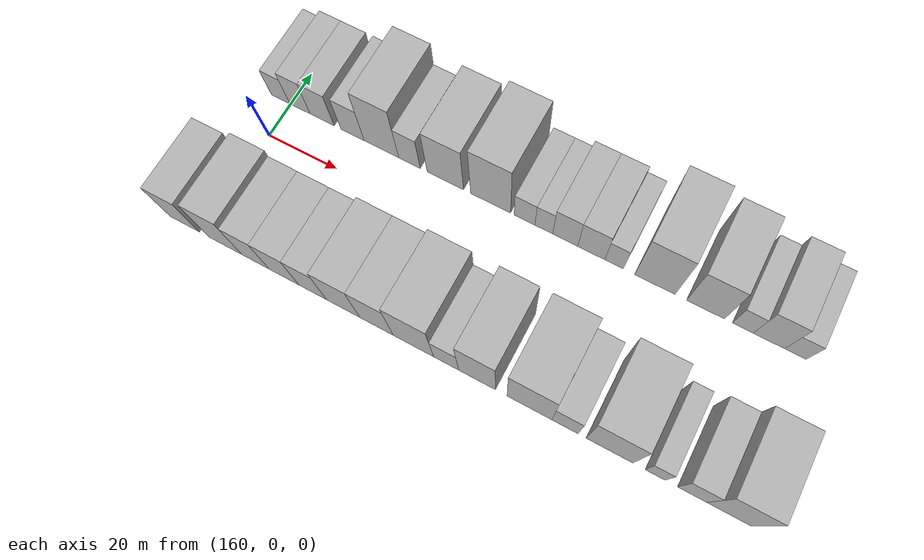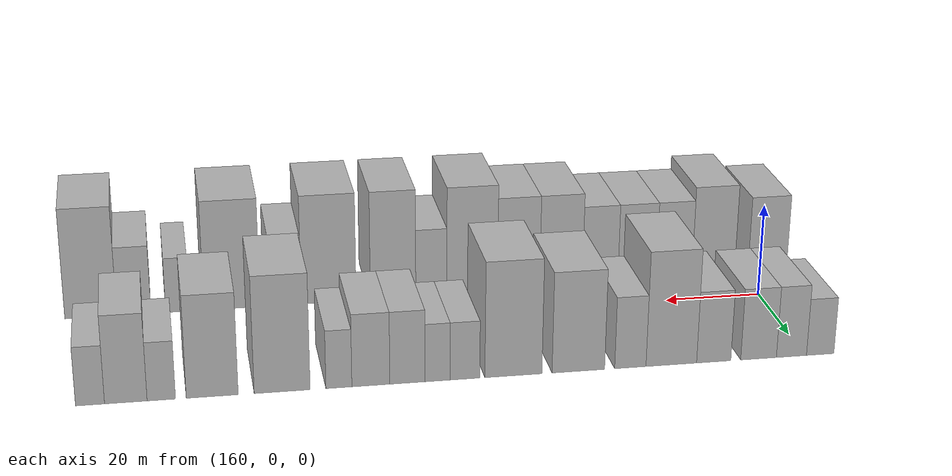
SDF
<sdf version="1.6">
 <world name="default">
  <model name="building_19">
   <static>1</static>
   <pose>156.9476 20.0000 0 0.000000 0.000000 1.570796</pose>
   <link name="link">
    <pose>0 0 6.00 0 0 0</pose>
    <collision name="collision"><geometry><box><size>20.0000 5.6008 12.0000</size></box></geometry></collision>
    <visual name="visual">
     <cast_shadows>0</cast_shadows>
     <geometry><box><size>20.0000 5.6008 12.0000</size></box></geometry>
     <material>
      <script>
       <uri>model://HANNAS_wall/materials/scripts</uri>
       <uri>model://HANNAS_wall/materials/textures</uri>
       <name>vrc/HANNAS_wall</name>
      </script>
     </material>
    </visual>
   </link>
  </model>
  <model name="building_20">
   <static>1</static>
   <pose>162.8189 20.0000 0 0.000000 0.000000 1.570796</pose>
   <link name="link">
    <pose>0 0 7.50 0 0 0</pose>
    <collision name="collision"><geometry><box><size>20.0000 6.1417 15.0000</size></box></geometry></collision>
    <visual name="visual">
     <cast_shadows>0</cast_shadows>
     <geometry><box><size>20.0000 6.1417 15.0000</size></box></geometry>
     <material>
      <script>
       <uri>model://HANNAS_wall/materials/scripts</uri>
       <uri>model://HANNAS_wall/materials/textures</uri>
       <name>vrc/HANNAS_wall</name>
      </script>
     </material>
    </visual>
   </link>
  </model>
  <model name="building_21">
   <static>1</static>
   <pose>169.5122 20.0000 0 0.000000 0.000000 1.570796</pose>
   <link name="link">
    <pose>0 0 7.50 0 0 0</pose>
    <collision name="collision"><geometry><box><size>20.0000 7.2449 15.0000</size></box></geometry></collision>
    <visual name="visual">
     <cast_shadows>0</cast_shadows>
     <geometry><box><size>20.0000 7.2449 15.0000</size></box></geometry>
     <material>
      <script>
       <uri>model://HANNAS_wall/materials/scripts</uri>
       <uri>model://HANNAS_wall/materials/textures</uri>
       <name>vrc/HANNAS_wall</name>
      </script>
     </material>
    </visual>
   </link>
  </model>
  <model name="building_22">
   <static>1</static>
   <pose>178.5858 20.0000 0 0.000000 0.000000 1.570796</pose>
   <link name="link">
    <pose>0 0 7.50 0 0 0</pose>
    <collision name="collision"><geometry><box><size>20.0000 6.9025 15.0000</size></box></geometry></collision>
    <visual name="visual">
     <cast_shadows>0</cast_shadows>
     <geometry><box><size>20.0000 6.9025 15.0000</size></box></geometry>
     <material>
      <script>
       <uri>model://HANNAS_wall/materials/scripts</uri>
       <uri>model://HANNAS_wall/materials/textures</uri>
       <name>vrc/HANNAS_wall</name>
      </script>
     </material>
    </visual>
   </link>
  </model>
  <model name="building_23">
   <static>1</static>
   <pose>187.1096 20.0000 0 0.000000 0.000000 1.570796</pose>
   <link name="link">
    <pose>0 0 12.00 0 0 0</pose>
    <collision name="collision"><geometry><box><size>20.0000 10.1450 24.0000</size></box></geometry></collision>
    <visual name="visual">
     <cast_shadows>0</cast_shadows>
     <geometry><box><size>20.0000 10.1450 24.0000</size></box></geometry>
     <material>
      <script>
       <uri>model://HANNAS_wall/materials/scripts</uri>
       <uri>model://HANNAS_wall/materials/textures</uri>
       <name>vrc/HANNAS_wall</name>
      </script>
     </material>
    </visual>
   </link>
  </model>
  <model name="building_24">
   <static>1</static>
   <pose>195.2996 20.0000 0 0.000000 0.000000 1.570796</pose>
   <link name="link">
    <pose>0 0 7.50 0 0 0</pose>
    <collision name="collision"><geometry><box><size>20.0000 6.2351 15.0000</size></box></geometry></collision>
    <visual name="visual">
     <cast_shadows>0</cast_shadows>
     <geometry><box><size>20.0000 6.2351 15.0000</size></box></geometry>
     <material>
      <script>
       <uri>model://HANNAS_wall/materials/scripts</uri>
       <uri>model://HANNAS_wall/materials/textures</uri>
       <name>vrc/HANNAS_wall</name>
      </script>
     </material>
    </visual>
   </link>
  </model>
  <model name="building_25">
   <static>1</static>
   <pose>205.6078 20.0000 0 0.000000 0.000000 1.570796</pose>
   <link name="link">
    <pose>0 0 10.50 0 0 0</pose>
    <collision name="collision"><geometry><box><size>20.0000 10.3812 21.0000</size></box></geometry></collision>
    <visual name="visual">
     <cast_shadows>0</cast_shadows>
     <geometry><box><size>20.0000 10.3812 21.0000</size></box></geometry>
     <material>
      <script>
       <uri>model://HANNAS_wall/materials/scripts</uri>
       <uri>model://HANNAS_wall/materials/textures</uri>
       <name>vrc/HANNAS_wall</name>
      </script>
     </material>
    </visual>
   </link>
  </model>
  <model name="building_26">
   <static>1</static>
   <pose>218.3820 20.0000 0 0.000000 0.000000 1.570796</pose>
   <link name="link">
    <pose>0 0 12.00 0 0 0</pose>
    <collision name="collision"><geometry><box><size>20.0000 11.1672 24.0000</size></box></geometry></collision>
    <visual name="visual">
     <cast_shadows>0</cast_shadows>
     <geometry><box><size>20.0000 11.1672 24.0000</size></box></geometry>
     <material>
      <script>
       <uri>model://HANNAS_wall/materials/scripts</uri>
       <uri>model://HANNAS_wall/materials/textures</uri>
       <name>vrc/HANNAS_wall</name>
      </script>
     </material>
    </visual>
   </link>
  </model>
  <model name="building_27">
   <static>1</static>
   <pose>227.8419 20.0000 0 0.000000 0.000000 1.570796</pose>
   <link name="link">
    <pose>0 0 6.00 0 0 0</pose>
    <collision name="collision"><geometry><box><size>20.0000 5.7525 12.0000</size></box></geometry></collision>
    <visual name="visual">
     <cast_shadows>0</cast_shadows>
     <geometry><box><size>20.0000 5.7525 12.0000</size></box></geometry>
     <material>
      <script>
       <uri>model://HANNAS_wall/materials/scripts</uri>
       <uri>model://HANNAS_wall/materials/textures</uri>
       <name>vrc/HANNAS_wall</name>
      </script>
     </material>
    </visual>
   </link>
  </model>
  <model name="building_28">
   <static>1</static>
   <pose>233.1549 20.0000 0 0.000000 0.000000 1.570796</pose>
   <link name="link">
    <pose>0 0 6.00 0 0 0</pose>
    <collision name="collision"><geometry><box><size>20.0000 4.8735 12.0000</size></box></geometry></collision>
    <visual name="visual">
     <cast_shadows>0</cast_shadows>
     <geometry><box><size>20.0000 4.8735 12.0000</size></box></geometry>
     <material>
      <script>
       <uri>model://HANNAS_wall/materials/scripts</uri>
       <uri>model://HANNAS_wall/materials/textures</uri>
       <name>vrc/HANNAS_wall</name>
      </script>
     </material>
    </visual>
   </link>
  </model>
  <model name="building_29">
   <static>1</static>
   <pose>238.9770 20.0000 0 0.000000 0.000000 1.570796</pose>
   <link name="link">
    <pose>0 0 7.50 0 0 0</pose>
    <collision name="collision"><geometry><box><size>20.0000 6.7708 15.0000</size></box></geometry></collision>
    <visual name="visual">
     <cast_shadows>0</cast_shadows>
     <geometry><box><size>20.0000 6.7708 15.0000</size></box></geometry>
     <material>
      <script>
       <uri>model://HANNAS_wall/materials/scripts</uri>
       <uri>model://HANNAS_wall/materials/textures</uri>
       <name>vrc/HANNAS_wall</name>
      </script>
     </material>
    </visual>
   </link>
  </model>
  <model name="building_30">
   <static>1</static>
   <pose>245.9957 20.0000 0 0.000000 0.000000 1.570796</pose>
   <link name="link">
    <pose>0 0 7.50 0 0 0</pose>
    <collision name="collision"><geometry><box><size>20.0000 7.2665 15.0000</size></box></geometry></collision>
    <visual name="visual">
     <cast_shadows>0</cast_shadows>
     <geometry><box><size>20.0000 7.2665 15.0000</size></box></geometry>
     <material>
      <script>
       <uri>model://HANNAS_wall/materials/scripts</uri>
       <uri>model://HANNAS_wall/materials/textures</uri>
       <name>vrc/HANNAS_wall</name>
      </script>
     </material>
    </visual>
   </link>
  </model>
  <model name="building_31">
   <static>1</static>
   <pose>252.1011 20.0000 0 0.000000 0.000000 1.570796</pose>
   <link name="link">
    <pose>0 0 6.00 0 0 0</pose>
    <collision name="collision"><geometry><box><size>20.0000 4.9444 12.0000</size></box></geometry></collision>
    <visual name="visual">
     <cast_shadows>0</cast_shadows>
     <geometry><box><size>20.0000 4.9444 12.0000</size></box></geometry>
     <material>
      <script>
       <uri>model://HANNAS_wall/materials/scripts</uri>
       <uri>model://HANNAS_wall/materials/textures</uri>
       <name>vrc/HANNAS_wall</name>
      </script>
     </material>
    </visual>
   </link>
  </model>
  <model name="building_32">
   <static>1</static>
   <pose>262.8687 20.0000 0 0.000000 0.000000 1.570796</pose>
   <link name="link">
    <pose>0 0 12.00 0 0 0</pose>
    <collision name="collision"><geometry><box><size>20.0000 10.5908 24.0000</size></box></geometry></collision>
    <visual name="visual">
     <cast_shadows>0</cast_shadows>
     <geometry><box><size>20.0000 10.5908 24.0000</size></box></geometry>
     <material>
      <script>
       <uri>model://HANNAS_wall/materials/scripts</uri>
       <uri>model://HANNAS_wall/materials/textures</uri>
       <name>vrc/HANNAS_wall</name>
      </script>
     </material>
    </visual>
   </link>
  </model>
  <model name="building_33">
   <static>1</static>
   <pose>276.0314 20.0000 0 0.000000 0.000000 1.570796</pose>
   <link name="link">
    <pose>0 0 10.50 0 0 0</pose>
    <collision name="collision"><geometry><box><size>20.0000 9.7345 21.0000</size></box></geometry></collision>
    <visual name="visual">
     <cast_shadows>0</cast_shadows>
     <geometry><box><size>20.0000 9.7345 21.0000</size></box></geometry>
     <material>
      <script>
       <uri>model://HANNAS_wall/materials/scripts</uri>
       <uri>model://HANNAS_wall/materials/textures</uri>
       <name>vrc/HANNAS_wall</name>
      </script>
     </material>
    </visual>
   </link>
  </model>
  <model name="building_34">
   <static>1</static>
   <pose>285.5381 20.0000 0 0.000000 0.000000 1.570796</pose>
   <link name="link">
    <pose>0 0 6.00 0 0 0</pose>
    <collision name="collision"><geometry><box><size>20.0000 5.2789 12.0000</size></box></geometry></collision>
    <visual name="visual">
     <cast_shadows>0</cast_shadows>
     <geometry><box><size>20.0000 5.2789 12.0000</size></box></geometry>
     <material>
      <script>
       <uri>model://HANNAS_wall/materials/scripts</uri>
       <uri>model://HANNAS_wall/materials/textures</uri>
       <name>vrc/HANNAS_wall</name>
      </script>
     </material>
    </visual>
   </link>
  </model>
  <model name="building_35">
   <static>1</static>
   <pose>292.1135 20.0000 0 0.000000 0.000000 1.570796</pose>
   <link name="link">
    <pose>0 0 9.00 0 0 0</pose>
    <collision name="collision"><geometry><box><size>20.0000 7.8719 18.0000</size></box></geometry></collision>
    <visual name="visual">
     <cast_shadows>0</cast_shadows>
     <geometry><box><size>20.0000 7.8719 18.0000</size></box></geometry>
     <material>
      <script>
       <uri>model://HANNAS_wall/materials/scripts</uri>
       <uri>model://HANNAS_wall/materials/textures</uri>
       <name>vrc/HANNAS_wall</name>
      </script>
     </material>
    </visual>
   </link>
  </model>
  <model name="building_36">
   <static>1</static>
   <pose>298.7198 20.0000 0 0.000000 0.000000 1.570796</pose>
   <link name="link">
    <pose>0 0 6.00 0 0 0</pose>
    <collision name="collision"><geometry><box><size>20.0000 5.3409 12.0000</size></box></geometry></collision>
    <visual name="visual">
     <cast_shadows>0</cast_shadows>
     <geometry><box><size>20.0000 5.3409 12.0000</size></box></geometry>
     <material>
      <script>
       <uri>model://HANNAS_wall/materials/scripts</uri>
       <uri>model://HANNAS_wall/materials/textures</uri>
       <name>vrc/HANNAS_wall</name>
      </script>
     </material>
    </visual>
   </link>
  </model>
  <model name="building_51">
   <static>1</static>
   <pose>154.9707 -20.0000 0 0.000000 0.000000 1.570796</pose>
   <link name="link">
    <pose>0 0 9.00 0 0 0</pose>
    <collision name="collision"><geometry><box><size>20.0000 8.6006 18.0000</size></box></geometry></collision>
    <visual name="visual">
     <cast_shadows>0</cast_shadows>
     <geometry><box><size>20.0000 8.6006 18.0000</size></box></geometry>
     <material>
      <script>
       <uri>model://HANNAS_wall/materials/scripts</uri>
       <uri>model://HANNAS_wall/materials/textures</uri>
       <name>vrc/HANNAS_wall</name>
      </script>
     </material>
    </visual>
   </link>
  </model>
  <model name="building_52">
   <static>1</static>
   <pose>166.9886 -20.0000 0 0.000000 0.000000 1.570796</pose>
   <link name="link">
    <pose>0 0 10.50 0 0 0</pose>
    <collision name="collision"><geometry><box><size>20.0000 9.4352 21.0000</size></box></geometry></collision>
    <visual name="visual">
     <cast_shadows>0</cast_shadows>
     <geometry><box><size>20.0000 9.4352 21.0000</size></box></geometry>
     <material>
      <script>
       <uri>model://HANNAS_wall/materials/scripts</uri>
       <uri>model://HANNAS_wall/materials/textures</uri>
       <name>vrc/HANNAS_wall</name>
      </script>
     </material>
    </visual>
   </link>
  </model>
  <model name="building_53">
   <static>1</static>
   <pose>175.6340 -20.0000 0 0.000000 0.000000 1.570796</pose>
   <link name="link">
    <pose>0 0 9.00 0 0 0</pose>
    <collision name="collision"><geometry><box><size>20.0000 7.8556 18.0000</size></box></geometry></collision>
    <visual name="visual">
     <cast_shadows>0</cast_shadows>
     <geometry><box><size>20.0000 7.8556 18.0000</size></box></geometry>
     <material>
      <script>
       <uri>model://HANNAS_wall/materials/scripts</uri>
       <uri>model://HANNAS_wall/materials/textures</uri>
       <name>vrc/HANNAS_wall</name>
      </script>
     </material>
    </visual>
   </link>
  </model>
  <model name="building_54">
   <static>1</static>
   <pose>183.7721 -20.0000 0 0.000000 0.000000 1.570796</pose>
   <link name="link">
    <pose>0 0 9.00 0 0 0</pose>
    <collision name="collision"><geometry><box><size>20.0000 8.4206 18.0000</size></box></geometry></collision>
    <visual name="visual">
     <cast_shadows>0</cast_shadows>
     <geometry><box><size>20.0000 8.4206 18.0000</size></box></geometry>
     <material>
      <script>
       <uri>model://HANNAS_wall/materials/scripts</uri>
       <uri>model://HANNAS_wall/materials/textures</uri>
       <name>vrc/HANNAS_wall</name>
      </script>
     </material>
    </visual>
   </link>
  </model>
  <model name="building_55">
   <static>1</static>
   <pose>191.8454 -20.0000 0 0.000000 0.000000 1.570796</pose>
   <link name="link">
    <pose>0 0 9.00 0 0 0</pose>
    <collision name="collision"><geometry><box><size>20.0000 7.7260 18.0000</size></box></geometry></collision>
    <visual name="visual">
     <cast_shadows>0</cast_shadows>
     <geometry><box><size>20.0000 7.7260 18.0000</size></box></geometry>
     <material>
      <script>
       <uri>model://HANNAS_wall/materials/scripts</uri>
       <uri>model://HANNAS_wall/materials/textures</uri>
       <name>vrc/HANNAS_wall</name>
      </script>
     </material>
    </visual>
   </link>
  </model>
  <model name="building_56">
   <static>1</static>
   <pose>200.3347 -20.0000 0 0.000000 0.000000 1.570796</pose>
   <link name="link">
    <pose>0 0 10.50 0 0 0</pose>
    <collision name="collision"><geometry><box><size>20.0000 9.2527 21.0000</size></box></geometry></collision>
    <visual name="visual">
     <cast_shadows>0</cast_shadows>
     <geometry><box><size>20.0000 9.2527 21.0000</size></box></geometry>
     <material>
      <script>
       <uri>model://HANNAS_wall/materials/scripts</uri>
       <uri>model://HANNAS_wall/materials/textures</uri>
       <name>vrc/HANNAS_wall</name>
      </script>
     </material>
    </visual>
   </link>
  </model>
  <model name="building_57">
   <static>1</static>
   <pose>209.5074 -20.0000 0 0.000000 0.000000 1.570796</pose>
   <link name="link">
    <pose>0 0 10.50 0 0 0</pose>
    <collision name="collision"><geometry><box><size>20.0000 9.0927 21.0000</size></box></geometry></collision>
    <visual name="visual">
     <cast_shadows>0</cast_shadows>
     <geometry><box><size>20.0000 9.0927 21.0000</size></box></geometry>
     <material>
      <script>
       <uri>model://HANNAS_wall/materials/scripts</uri>
       <uri>model://HANNAS_wall/materials/textures</uri>
       <name>vrc/HANNAS_wall</name>
      </script>
     </material>
    </visual>
   </link>
  </model>
  <model name="building_58">
   <static>1</static>
   <pose>219.4690 -20.0000 0 0.000000 0.000000 1.570796</pose>
   <link name="link">
    <pose>0 0 12.00 0 0 0</pose>
    <collision name="collision"><geometry><box><size>20.0000 10.8306 24.0000</size></box></geometry></collision>
    <visual name="visual">
     <cast_shadows>0</cast_shadows>
     <geometry><box><size>20.0000 10.8306 24.0000</size></box></geometry>
     <material>
      <script>
       <uri>model://HANNAS_wall/materials/scripts</uri>
       <uri>model://HANNAS_wall/materials/textures</uri>
       <name>vrc/HANNAS_wall</name>
      </script>
     </material>
    </visual>
   </link>
  </model>
  <model name="building_59">
   <static>1</static>
   <pose>228.1884 -20.0000 0 0.000000 0.000000 1.570796</pose>
   <link name="link">
    <pose>0 0 7.50 0 0 0</pose>
    <collision name="collision"><geometry><box><size>20.0000 6.6082 15.0000</size></box></geometry></collision>
    <visual name="visual">
     <cast_shadows>0</cast_shadows>
     <geometry><box><size>20.0000 6.6082 15.0000</size></box></geometry>
     <material>
      <script>
       <uri>model://HANNAS_wall/materials/scripts</uri>
       <uri>model://HANNAS_wall/materials/textures</uri>
       <name>vrc/HANNAS_wall</name>
      </script>
     </material>
    </visual>
   </link>
  </model>
  <model name="building_60">
   <static>1</static>
   <pose>236.2940 -20.0000 0 0.000000 0.000000 1.570796</pose>
   <link name="link">
    <pose>0 0 12.00 0 0 0</pose>
    <collision name="collision"><geometry><box><size>20.0000 9.6031 24.0000</size></box></geometry></collision>
    <visual name="visual">
     <cast_shadows>0</cast_shadows>
     <geometry><box><size>20.0000 9.6031 24.0000</size></box></geometry>
     <material>
      <script>
       <uri>model://HANNAS_wall/materials/scripts</uri>
       <uri>model://HANNAS_wall/materials/textures</uri>
       <name>vrc/HANNAS_wall</name>
      </script>
     </material>
    </visual>
   </link>
  </model>
  <model name="building_61">
   <static>1</static>
   <pose>249.8367 -20.0000 0 0.000000 0.000000 1.570796</pose>
   <link name="link">
    <pose>0 0 12.00 0 0 0</pose>
    <collision name="collision"><geometry><box><size>20.0000 11.4823 24.0000</size></box></geometry></collision>
    <visual name="visual">
     <cast_shadows>0</cast_shadows>
     <geometry><box><size>20.0000 11.4823 24.0000</size></box></geometry>
     <material>
      <script>
       <uri>model://HANNAS_wall/materials/scripts</uri>
       <uri>model://HANNAS_wall/materials/textures</uri>
       <name>vrc/HANNAS_wall</name>
      </script>
     </material>
    </visual>
   </link>
  </model>
  <model name="building_62">
   <static>1</static>
   <pose>258.8694 -20.0000 0 0.000000 0.000000 1.570796</pose>
   <link name="link">
    <pose>0 0 7.50 0 0 0</pose>
    <collision name="collision"><geometry><box><size>20.0000 6.5830 15.0000</size></box></geometry></collision>
    <visual name="visual">
     <cast_shadows>0</cast_shadows>
     <geometry><box><size>20.0000 6.5830 15.0000</size></box></geometry>
     <material>
      <script>
       <uri>model://HANNAS_wall/materials/scripts</uri>
       <uri>model://HANNAS_wall/materials/textures</uri>
       <name>vrc/HANNAS_wall</name>
      </script>
     </material>
    </visual>
   </link>
  </model>
  <model name="building_63">
   <static>1</static>
   <pose>269.9667 -20.0000 0 0.000000 0.000000 1.570796</pose>
   <link name="link">
    <pose>0 0 12.00 0 0 0</pose>
    <collision name="collision"><geometry><box><size>20.0000 11.6117 24.0000</size></box></geometry></collision>
    <visual name="visual">
     <cast_shadows>0</cast_shadows>
     <geometry><box><size>20.0000 11.6117 24.0000</size></box></geometry>
     <material>
      <script>
       <uri>model://HANNAS_wall/materials/scripts</uri>
       <uri>model://HANNAS_wall/materials/textures</uri>
       <name>vrc/HANNAS_wall</name>
      </script>
     </material>
    </visual>
   </link>
  </model>
  <model name="building_64">
   <static>1</static>
   <pose>281.1957 -20.0000 0 0.000000 0.000000 1.570796</pose>
   <link name="link">
    <pose>0 0 6.00 0 0 0</pose>
    <collision name="collision"><geometry><box><size>20.0000 4.8461 12.0000</size></box></geometry></collision>
    <visual name="visual">
     <cast_shadows>0</cast_shadows>
     <geometry><box><size>20.0000 4.8461 12.0000</size></box></geometry>
     <material>
      <script>
       <uri>model://HANNAS_wall/materials/scripts</uri>
       <uri>model://HANNAS_wall/materials/textures</uri>
       <name>vrc/HANNAS_wall</name>
      </script>
     </material>
    </visual>
   </link>
  </model>
  <model name="building_65">
   <static>1</static>
   <pose>290.1190 -20.0000 0 0.000000 0.000000 1.570796</pose>
   <link name="link">
    <pose>0 0 7.50 0 0 0</pose>
    <collision name="collision"><geometry><box><size>20.0000 7.0005 15.0000</size></box></geometry></collision>
    <visual name="visual">
     <cast_shadows>0</cast_shadows>
     <geometry><box><size>20.0000 7.0005 15.0000</size></box></geometry>
     <material>
      <script>
       <uri>model://HANNAS_wall/materials/scripts</uri>
       <uri>model://HANNAS_wall/materials/textures</uri>
       <name>vrc/HANNAS_wall</name>
      </script>
     </material>
    </visual>
   </link>
  </model>
  <model name="building_66">
   <static>1</static>
   <pose>298.8660 -20.0000 0 0.000000 0.000000 1.570796</pose>
   <link name="link">
    <pose>0 0 12.00 0 0 0</pose>
    <collision name="collision"><geometry><box><size>20.0000 10.4935 24.0000</size></box></geometry></collision>
    <visual name="visual">
     <cast_shadows>0</cast_shadows>
     <geometry><box><size>20.0000 10.4935 24.0000</size></box></geometry>
     <material>
      <script>
       <uri>model://HANNAS_wall/materials/scripts</uri>
       <uri>model://HANNAS_wall/materials/textures</uri>
       <name>vrc/HANNAS_wall</name>
      </script>
     </material>
    </visual>
   </link>
  </model>
 </world>
</sdf>
